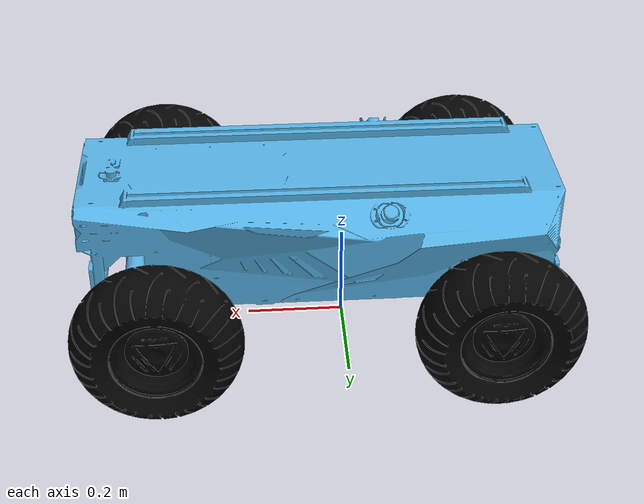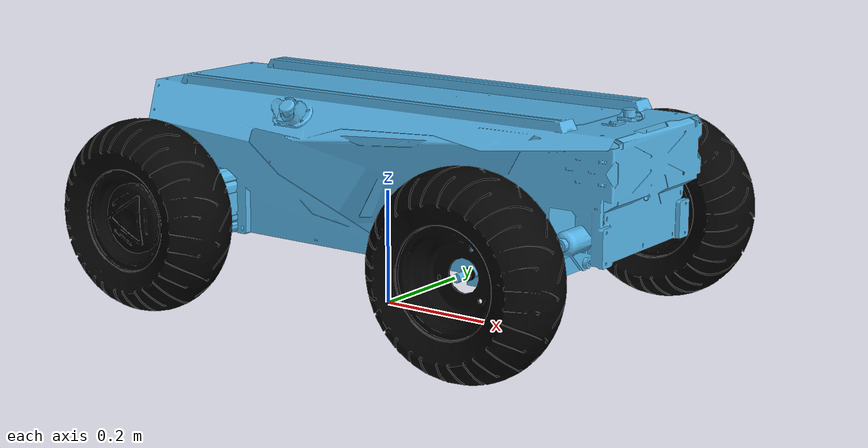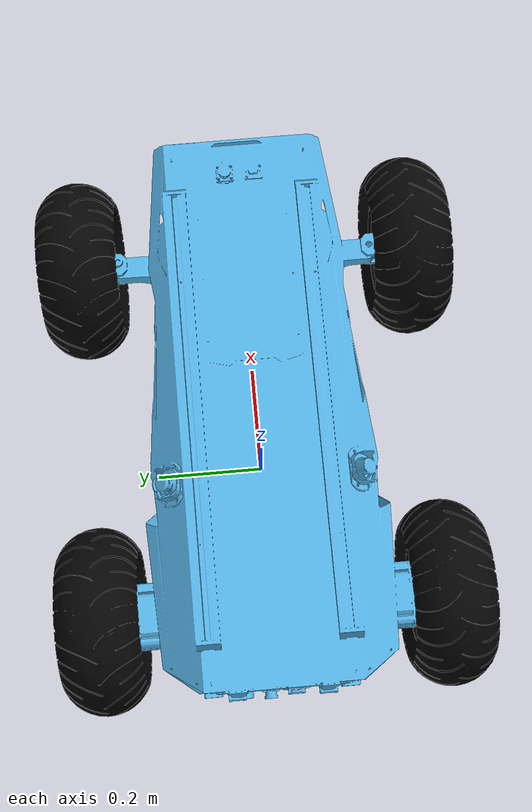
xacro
<?xml version="1.0"?>
<robot xmlns:xacro="http://www.ros.org/wiki/xacro">

  <!-- Include the inertial values from the following -->
  <xacro:include filename="inertial_macros.xacro"/>
  <xacro:include filename="meshes.xacro"/>

  <!-- Constants for robot dimensions -->
  <xacro:property name="z_base_to_wheel" value="-0.19558" />
  <xacro:property name="x_base_to_rear" value="-0.28" />
  <xacro:property name="x_base_to_front" value="0.37142" />
  <xacro:property name="y_base_to_wheel" value="0.2925" />
  <xacro:property name="max_steer_angle_central" value="0.461" />

  <link name="base_link"/>

  <joint name="chassis_joint" type="fixed">
    <parent link="base_link"/>
    <child link="chassis"/>
    <origin rpy="0 0 0" xyz="0 0 0.37"/>
  </joint>

  <link name="chassis">
    <xacro:mesh name="chassis"/>
    <xacro:inertial_chassis/>
  </link>

  <link name="rear_left_wheel">
    <xacro:mesh name="rear_left_wheel"/>
    <xacro:inertial_wheel/>
  </link>
  <joint name="rear_left_wheel_joint" type="continuous">
    <parent link="chassis"/>
    <child link="rear_left_wheel"/>
    <origin xyz="${x_base_to_rear} ${y_base_to_wheel} ${z_base_to_wheel}" rpy="${pi/2} 0 0" />
    <axis xyz="0 0 -1" />
    <dynamics damping="0.2" friction="15"/>
    <limit effort="10.0" velocity="10.0"/>
  </joint>
  <xacro:gazebo_friction reference="rear_left_wheel"/>

  <link name="rear_right_wheel">
    <xacro:mesh name="rear_right_wheel"/>
    <xacro:inertial_wheel/>
  </link>
  <joint name="rear_right_wheel_joint" type="continuous">
    <parent link="chassis"/>
    <child link="rear_right_wheel"/>
    <origin xyz="${x_base_to_rear} -${y_base_to_wheel} ${z_base_to_wheel}" rpy="${pi/2} 0 0" />
    <axis xyz="0 0 -1"/>
    <dynamics damping="0.2" friction="15"/>
    <limit effort="10.0" velocity="10.0"/>
    <mimic joint="rear_left_wheel_joint" multiplier="1.0" offset="0.0"/>
  </joint>
  <xacro:gazebo_friction reference="rear_right_wheel"/>

  <link name="front_left_steering_link">
    <xacro:virtual/>
    <xacro:inertial_steering_link/>
  </link>
  <joint name="front_left_steering_joint" type="revolute">
    <parent link="chassis"/>
    <child link="front_left_steering_link"/>
    <origin xyz="${x_base_to_front} ${y_base_to_wheel} ${z_base_to_wheel}" rpy="${pi/2} 0 0" />
    <axis   xyz="0 1 0" />
    <limit  lower="-${max_steer_angle_central}"  upper="${max_steer_angle_central}"  effort="10.0"  velocity="1" />
    <dynamics damping="0.2"/>
  </joint>

  <link name="front_left_wheel">
    <xacro:mesh name="front_left_wheel"/>
    <xacro:inertial_wheel/>
  </link>
  <joint name="front_left_wheel_joint" type="continuous">
    <parent link="front_left_steering_link"/>
    <child link="front_left_wheel"/>
    <origin xyz="0 0 0" rpy="0 0 0" />
    <axis   xyz="0 0 -1" />
    <mimic joint="rear_left_wheel_joint" multiplier="1.0" offset="0.0"/>
  </joint>

  <link name="front_right_steering_link">
    <xacro:virtual/>
    <xacro:inertial_steering_link/>
  </link>
  <joint name="front_right_steering_joint" type="revolute">
    <parent link="chassis"/>
    <child link="front_right_steering_link"/>
    <origin xyz="${x_base_to_front}  -${y_base_to_wheel} ${z_base_to_wheel}" rpy="${pi/2} 0 0" />
    <axis   xyz="0 1 0" />
    <limit  lower="-${max_steer_angle_central}"  upper="${max_steer_angle_central}"  effort="10.0"  velocity="1" />
    <dynamics damping="0.2"/>
    <mimic joint="front_left_steering_joint" multiplier="1.0" offset="0.0"/>
  </joint>

  <link name="front_right_wheel">
    <xacro:mesh name="front_right_wheel"/>
    <xacro:inertial_wheel/>
  </link>
  <joint name="front_right_wheel_joint" type="continuous">
    <parent link="front_right_steering_link"/>
    <child link="front_right_wheel"/>
    <origin xyz="0 0 0" rpy="0 0 0" />
    <axis   xyz="0 0 -1" />
    <mimic joint="rear_left_wheel_joint" multiplier="1.0" offset="0.0"/>
  </joint>

</robot>

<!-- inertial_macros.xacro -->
<robot xmlns:xacro="http://www.ros.org/wiki/xacro" >

  <xacro:macro name="inertial_chassis">
    <inertial>
      <origin
        xyz="0.0266989327622036 0.000409203500587652 -0.135901124750884"
        rpy="0 0 0" />
      <mass
        value="72" />
      <inertia
        ixx="0.0332370959804736"
        ixy="-1.013150489971E-06"
        ixz="-0.00188859201421112"
        iyy="0.111072002332437"
        iyz="-5.13308150598312E-07"
        izz="0.12660862809283" />
    </inertial>
  </xacro:macro>

  <xacro:macro name="inertial_wheel">
    <inertial>
      <origin
        xyz="-6.5774E-06 2.0242E-05 -0.0096386"
        rpy="0 0 0" />
      <mass
        value="7.0" />
      <inertia
        ixx="0.063724"
        ixy="0"
        ixz="0"
        iyy="0.063724"
        iyz="0"
        izz="0.11072" />
    </inertial>
  </xacro:macro>

  <xacro:macro name="inertial_steering_link">
    <inertial>
      <origin
        xyz="0 0 0"
        rpy="0 0 0" />
      <mass
        value="0.005" />
      <inertia
        ixx="0.1"
        ixy="0"
        ixz="0"
        iyy="0.1"
        iyz="0"
        izz="0.1" />
    </inertial>
  </xacro:macro>

</robot>

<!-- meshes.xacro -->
<robot xmlns:xacro="http://www.ros.org/wiki/xacro" >

  <xacro:macro name="mesh" params="name">
    <visual>
      <origin xyz="0 0 0" rpy="0 0 0"/>
      <geometry>
        <mesh filename="file://$(find hunter_model)/meshes/${name}.dae" />
      </geometry>
    </visual>
    <collision>
      <origin xyz="0 0 0" rpy="0 0 0"/>
      <geometry>
        <mesh filename="file://$(find hunter_model)/meshes/${name}.dae" />
      </geometry>
    </collision>
  </xacro:macro>

  <xacro:macro name="virtual">
    <visual>
      <origin xyz="0 0 0" rpy="0 0 0"/>
      <geometry>
        <cylinder length="0.01" radius="0.01"/>
      </geometry>
      <material name="invisible">
        <color rgba="0.0 0.0 0.0 0.0"/>
      </material>
    </visual>
  </xacro:macro>

  <xacro:macro name="gazebo_friction" params="reference">
    <gazebo reference="${reference}">
      <mu1 value="1.0"/>
      <mu2 value="0.5"/>
      <kp value="10000000.0" />
      <kd value="1.0" />
      <fdir1 value="1 0 0"/>
    </gazebo>
  </xacro:macro>

</robot>
